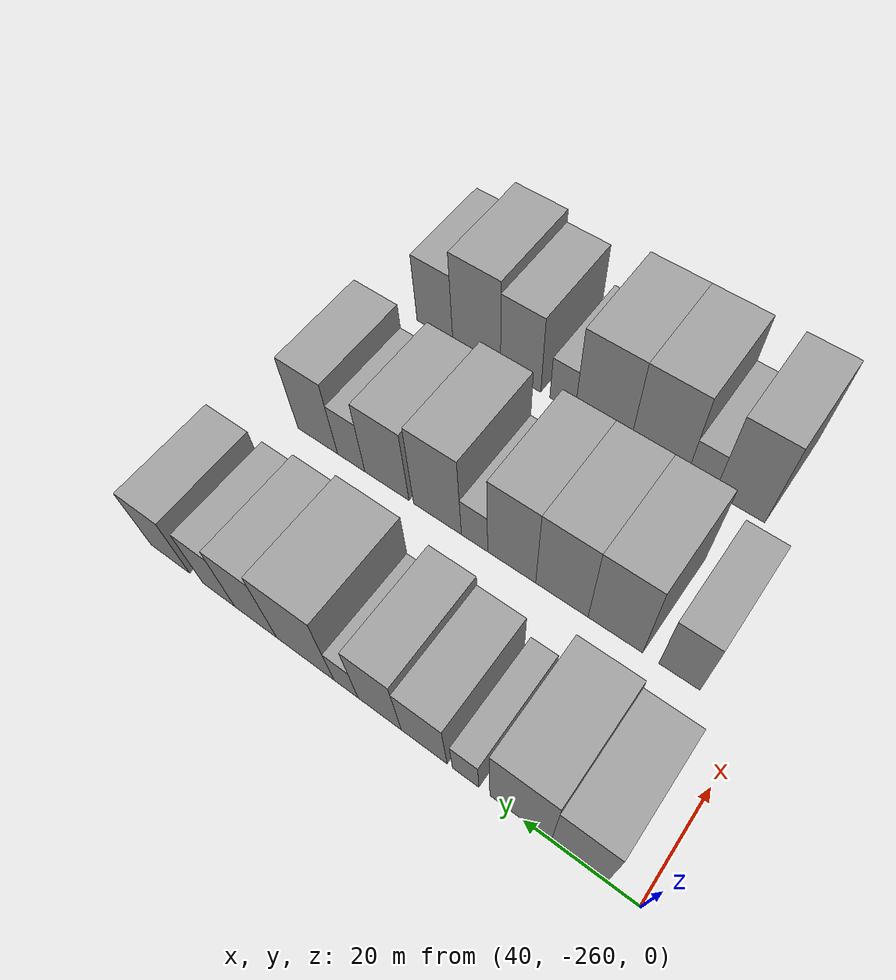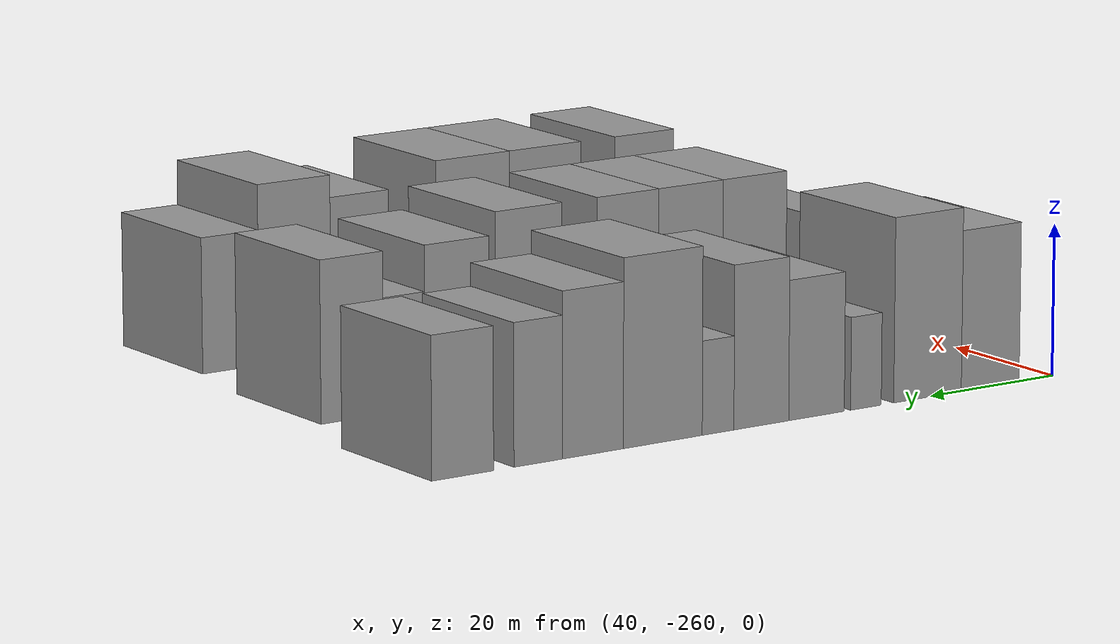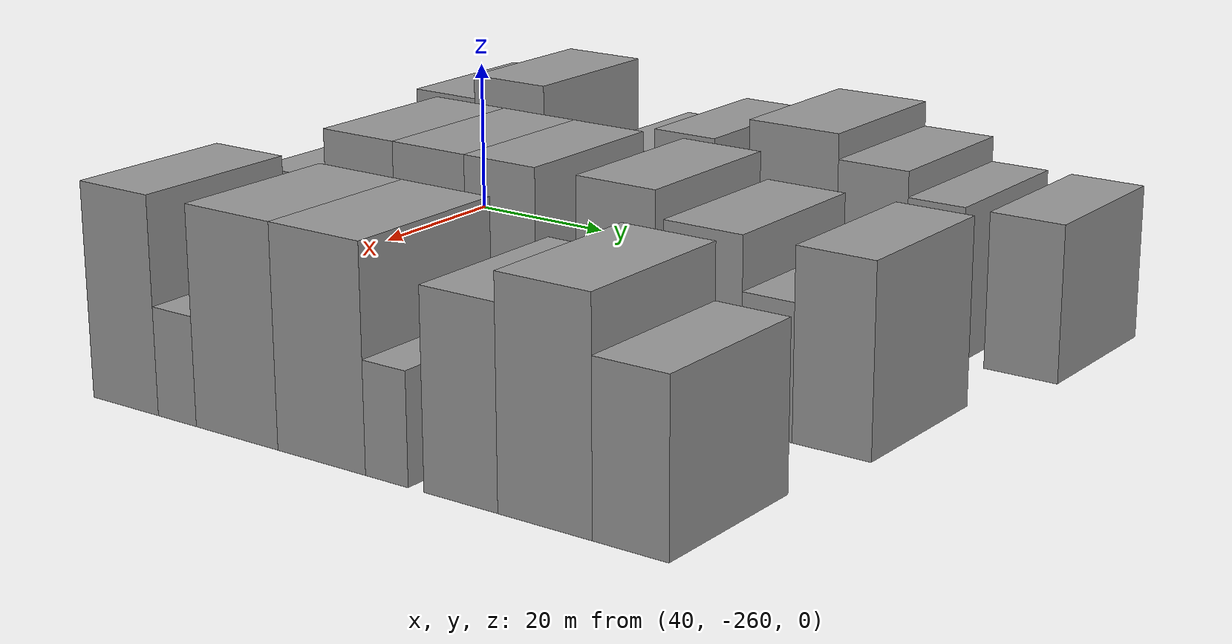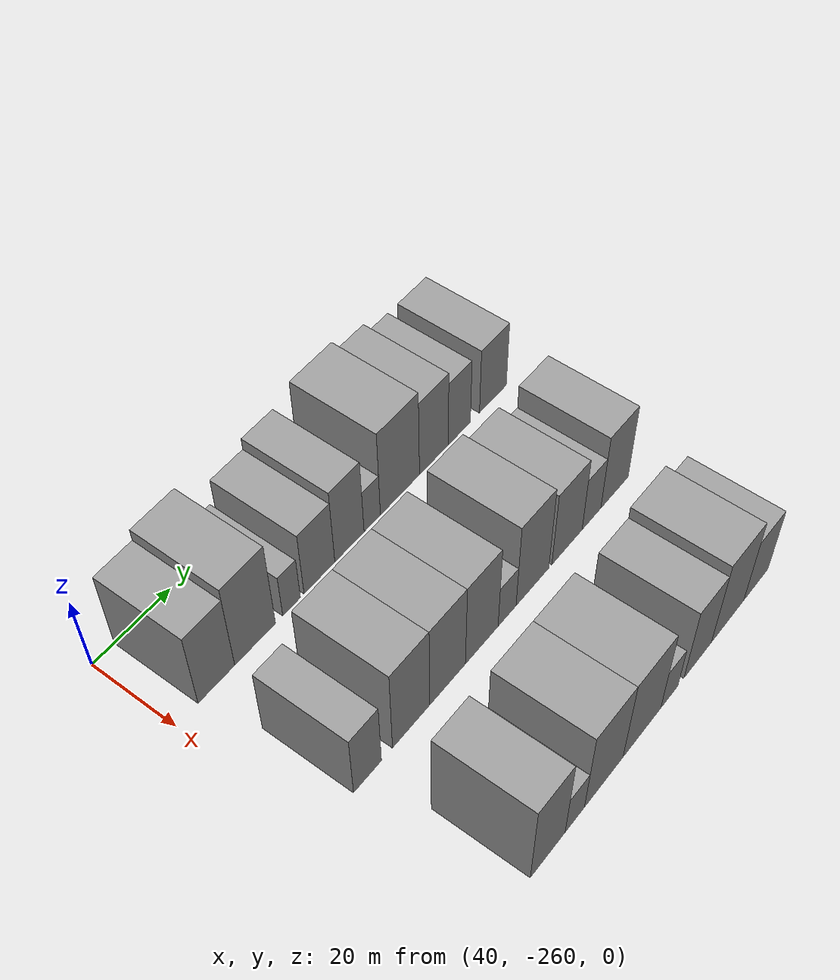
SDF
<sdf version="1.6">
 <world name="default">
  <model name="building_7">
   <static>1</static>
   <pose>50.0000 -249.6908 0 0.000000 0.000000 0.000000</pose>
   <link name="link">
    <pose>0 0 10.50 0 0 0</pose>
    <collision name="collision"><geometry><box><size>20.0000 9.5032 21.0000</size></box></geometry></collision>
    <visual name="visual">
     <cast_shadows>0</cast_shadows>
     <geometry><box><size>20.0000 9.5032 21.0000</size></box></geometry>
     <material>
      <script>
       <uri>model://grey_wall/materials/scripts</uri>
       <uri>model://grey_wall/materials/textures</uri>
       <name>vrc/grey_wall</name>
      </script>
     </material>
    </visual>
   </link>
  </model>
  <model name="building_8">
   <static>1</static>
   <pose>50.0000 -239.4764 0 0.000000 0.000000 0.000000</pose>
   <link name="link">
    <pose>0 0 12.00 0 0 0</pose>
    <collision name="collision"><geometry><box><size>20.0000 10.9257 24.0000</size></box></geometry></collision>
    <visual name="visual">
     <cast_shadows>0</cast_shadows>
     <geometry><box><size>20.0000 10.9257 24.0000</size></box></geometry>
     <material>
      <script>
       <uri>model://grey_wall/materials/scripts</uri>
       <uri>model://grey_wall/materials/textures</uri>
       <name>vrc/grey_wall</name>
      </script>
     </material>
    </visual>
   </link>
  </model>
  <model name="building_9">
   <static>1</static>
   <pose>50.0000 -229.5694 0 0.000000 0.000000 0.000000</pose>
   <link name="link">
    <pose>0 0 6.00 0 0 0</pose>
    <collision name="collision"><geometry><box><size>20.0000 4.8882 12.0000</size></box></geometry></collision>
    <visual name="visual">
     <cast_shadows>0</cast_shadows>
     <geometry><box><size>20.0000 4.8882 12.0000</size></box></geometry>
     <material>
      <script>
       <uri>model://grey_wall/materials/scripts</uri>
       <uri>model://grey_wall/materials/textures</uri>
       <name>vrc/grey_wall</name>
      </script>
     </material>
    </visual>
   </link>
  </model>
  <model name="building_10">
   <static>1</static>
   <pose>50.0000 -221.7451 0 0.000000 0.000000 0.000000</pose>
   <link name="link">
    <pose>0 0 9.00 0 0 0</pose>
    <collision name="collision"><geometry><box><size>20.0000 8.7604 18.0000</size></box></geometry></collision>
    <visual name="visual">
     <cast_shadows>0</cast_shadows>
     <geometry><box><size>20.0000 8.7604 18.0000</size></box></geometry>
     <material>
      <script>
       <uri>model://grey_wall/materials/scripts</uri>
       <uri>model://grey_wall/materials/textures</uri>
       <name>vrc/grey_wall</name>
      </script>
     </material>
    </visual>
   </link>
  </model>
  <model name="building_11">
   <static>1</static>
   <pose>50.0000 -213.0992 0 0.000000 0.000000 0.000000</pose>
   <link name="link">
    <pose>0 0 10.50 0 0 0</pose>
    <collision name="collision"><geometry><box><size>20.0000 8.5314 21.0000</size></box></geometry></collision>
    <visual name="visual">
     <cast_shadows>0</cast_shadows>
     <geometry><box><size>20.0000 8.5314 21.0000</size></box></geometry>
     <material>
      <script>
       <uri>model://grey_wall/materials/scripts</uri>
       <uri>model://grey_wall/materials/textures</uri>
       <name>vrc/grey_wall</name>
      </script>
     </material>
    </visual>
   </link>
  </model>
  <model name="building_12">
   <static>1</static>
   <pose>50.0000 -206.3909 0 0.000000 0.000000 0.000000</pose>
   <link name="link">
    <pose>0 0 6.00 0 0 0</pose>
    <collision name="collision"><geometry><box><size>20.0000 4.8852 12.0000</size></box></geometry></collision>
    <visual name="visual">
     <cast_shadows>0</cast_shadows>
     <geometry><box><size>20.0000 4.8852 12.0000</size></box></geometry>
     <material>
      <script>
       <uri>model://grey_wall/materials/scripts</uri>
       <uri>model://grey_wall/materials/textures</uri>
       <name>vrc/grey_wall</name>
      </script>
     </material>
    </visual>
   </link>
  </model>
  <model name="building_13">
   <static>1</static>
   <pose>50.0000 -197.9598 0 0.000000 0.000000 0.000000</pose>
   <link name="link">
    <pose>0 0 12.00 0 0 0</pose>
    <collision name="collision"><geometry><box><size>20.0000 11.9770 24.0000</size></box></geometry></collision>
    <visual name="visual">
     <cast_shadows>0</cast_shadows>
     <geometry><box><size>20.0000 11.9770 24.0000</size></box></geometry>
     <material>
      <script>
       <uri>model://grey_wall/materials/scripts</uri>
       <uri>model://grey_wall/materials/textures</uri>
       <name>vrc/grey_wall</name>
      </script>
     </material>
    </visual>
   </link>
  </model>
  <model name="building_14">
   <static>1</static>
   <pose>50.0000 -187.4181 0 0.000000 0.000000 0.000000</pose>
   <link name="link">
    <pose>0 0 10.50 0 0 0</pose>
    <collision name="collision"><geometry><box><size>20.0000 9.1064 21.0000</size></box></geometry></collision>
    <visual name="visual">
     <cast_shadows>0</cast_shadows>
     <geometry><box><size>20.0000 9.1064 21.0000</size></box></geometry>
     <material>
      <script>
       <uri>model://grey_wall/materials/scripts</uri>
       <uri>model://grey_wall/materials/textures</uri>
       <name>vrc/grey_wall</name>
      </script>
     </material>
    </visual>
   </link>
  </model>
  <model name="building_15">
   <static>1</static>
   <pose>50.0000 -179.2638 0 0.000000 0.000000 0.000000</pose>
   <link name="link">
    <pose>0 0 9.00 0 0 0</pose>
    <collision name="collision"><geometry><box><size>20.0000 7.2021 18.0000</size></box></geometry></collision>
    <visual name="visual">
     <cast_shadows>0</cast_shadows>
     <geometry><box><size>20.0000 7.2021 18.0000</size></box></geometry>
     <material>
      <script>
       <uri>model://grey_wall/materials/scripts</uri>
       <uri>model://grey_wall/materials/textures</uri>
       <name>vrc/grey_wall</name>
      </script>
     </material>
    </visual>
   </link>
  </model>
  <model name="building_16">
   <static>1</static>
   <pose>50.0000 -168.1647 0 0.000000 0.000000 0.000000</pose>
   <link name="link">
    <pose>0 0 9.00 0 0 0</pose>
    <collision name="collision"><geometry><box><size>20.0000 8.9962 18.0000</size></box></geometry></collision>
    <visual name="visual">
     <cast_shadows>0</cast_shadows>
     <geometry><box><size>20.0000 8.9962 18.0000</size></box></geometry>
     <material>
      <script>
       <uri>model://grey_wall/materials/scripts</uri>
       <uri>model://grey_wall/materials/textures</uri>
       <name>vrc/grey_wall</name>
      </script>
     </material>
    </visual>
   </link>
  </model>
  <model name="building_82">
   <static>1</static>
   <pose>82.0000 -247.6128 0 0.000000 0.000000 0.000000</pose>
   <link name="link">
    <pose>0 0 9.00 0 0 0</pose>
    <collision name="collision"><geometry><box><size>20.0000 7.4602 18.0000</size></box></geometry></collision>
    <visual name="visual">
     <cast_shadows>0</cast_shadows>
     <geometry><box><size>20.0000 7.4602 18.0000</size></box></geometry>
     <material>
      <script>
       <uri>model://grey_wall/materials/scripts</uri>
       <uri>model://grey_wall/materials/textures</uri>
       <name>vrc/grey_wall</name>
      </script>
     </material>
    </visual>
   </link>
  </model>
  <model name="building_83">
   <static>1</static>
   <pose>82.0000 -235.7181 0 0.000000 0.000000 0.000000</pose>
   <link name="link">
    <pose>0 0 12.00 0 0 0</pose>
    <collision name="collision"><geometry><box><size>20.0000 10.3291 24.0000</size></box></geometry></collision>
    <visual name="visual">
     <cast_shadows>0</cast_shadows>
     <geometry><box><size>20.0000 10.3291 24.0000</size></box></geometry>
     <material>
      <script>
       <uri>model://grey_wall/materials/scripts</uri>
       <uri>model://grey_wall/materials/textures</uri>
       <name>vrc/grey_wall</name>
      </script>
     </material>
    </visual>
   </link>
  </model>
  <model name="building_84">
   <static>1</static>
   <pose>82.0000 -225.4066 0 0.000000 0.000000 0.000000</pose>
   <link name="link">
    <pose>0 0 12.00 0 0 0</pose>
    <collision name="collision"><geometry><box><size>20.0000 10.2939 24.0000</size></box></geometry></collision>
    <visual name="visual">
     <cast_shadows>0</cast_shadows>
     <geometry><box><size>20.0000 10.2939 24.0000</size></box></geometry>
     <material>
      <script>
       <uri>model://grey_wall/materials/scripts</uri>
       <uri>model://grey_wall/materials/textures</uri>
       <name>vrc/grey_wall</name>
      </script>
     </material>
    </visual>
   </link>
  </model>
  <model name="building_85">
   <static>1</static>
   <pose>82.0000 -215.3774 0 0.000000 0.000000 0.000000</pose>
   <link name="link">
    <pose>0 0 12.00 0 0 0</pose>
    <collision name="collision"><geometry><box><size>20.0000 9.7645 24.0000</size></box></geometry></collision>
    <visual name="visual">
     <cast_shadows>0</cast_shadows>
     <geometry><box><size>20.0000 9.7645 24.0000</size></box></geometry>
     <material>
      <script>
       <uri>model://grey_wall/materials/scripts</uri>
       <uri>model://grey_wall/materials/textures</uri>
       <name>vrc/grey_wall</name>
      </script>
     </material>
    </visual>
   </link>
  </model>
  <model name="building_86">
   <static>1</static>
   <pose>82.0000 -207.7499 0 0.000000 0.000000 0.000000</pose>
   <link name="link">
    <pose>0 0 6.00 0 0 0</pose>
    <collision name="collision"><geometry><box><size>20.0000 5.4905 12.0000</size></box></geometry></collision>
    <visual name="visual">
     <cast_shadows>0</cast_shadows>
     <geometry><box><size>20.0000 5.4905 12.0000</size></box></geometry>
     <material>
      <script>
       <uri>model://grey_wall/materials/scripts</uri>
       <uri>model://grey_wall/materials/textures</uri>
       <name>vrc/grey_wall</name>
      </script>
     </material>
    </visual>
   </link>
  </model>
  <model name="building_87">
   <static>1</static>
   <pose>82.0000 -199.8691 0 0.000000 0.000000 0.000000</pose>
   <link name="link">
    <pose>0 0 12.00 0 0 0</pose>
    <collision name="collision"><geometry><box><size>20.0000 10.2711 24.0000</size></box></geometry></collision>
    <visual name="visual">
     <cast_shadows>0</cast_shadows>
     <geometry><box><size>20.0000 10.2711 24.0000</size></box></geometry>
     <material>
      <script>
       <uri>model://grey_wall/materials/scripts</uri>
       <uri>model://grey_wall/materials/textures</uri>
       <name>vrc/grey_wall</name>
      </script>
     </material>
    </visual>
   </link>
  </model>
  <model name="building_88">
   <static>1</static>
   <pose>82.0000 -188.8175 0 0.000000 0.000000 0.000000</pose>
   <link name="link">
    <pose>0 0 10.50 0 0 0</pose>
    <collision name="collision"><geometry><box><size>20.0000 9.8321 21.0000</size></box></geometry></collision>
    <visual name="visual">
     <cast_shadows>0</cast_shadows>
     <geometry><box><size>20.0000 9.8321 21.0000</size></box></geometry>
     <material>
      <script>
       <uri>model://grey_wall/materials/scripts</uri>
       <uri>model://grey_wall/materials/textures</uri>
       <name>vrc/grey_wall</name>
      </script>
     </material>
    </visual>
   </link>
  </model>
  <model name="building_89">
   <static>1</static>
   <pose>82.0000 -180.7747 0 0.000000 0.000000 0.000000</pose>
   <link name="link">
    <pose>0 0 7.50 0 0 0</pose>
    <collision name="collision"><geometry><box><size>20.0000 6.2535 15.0000</size></box></geometry></collision>
    <visual name="visual">
     <cast_shadows>0</cast_shadows>
     <geometry><box><size>20.0000 6.2535 15.0000</size></box></geometry>
     <material>
      <script>
       <uri>model://grey_wall/materials/scripts</uri>
       <uri>model://grey_wall/materials/textures</uri>
       <name>vrc/grey_wall</name>
      </script>
     </material>
    </visual>
   </link>
  </model>
  <model name="building_90">
   <static>1</static>
   <pose>82.0000 -172.9870 0 0.000000 0.000000 0.000000</pose>
   <link name="link">
    <pose>0 0 10.50 0 0 0</pose>
    <collision name="collision"><geometry><box><size>20.0000 9.3221 21.0000</size></box></geometry></collision>
    <visual name="visual">
     <cast_shadows>0</cast_shadows>
     <geometry><box><size>20.0000 9.3221 21.0000</size></box></geometry>
     <material>
      <script>
       <uri>model://grey_wall/materials/scripts</uri>
       <uri>model://grey_wall/materials/textures</uri>
       <name>vrc/grey_wall</name>
      </script>
     </material>
    </visual>
   </link>
  </model>
  <model name="building_160">
   <static>1</static>
   <pose>114.0000 -240.8364 0 0.000000 0.000000 0.000000</pose>
   <link name="link">
    <pose>0 0 12.00 0 0 0</pose>
    <collision name="collision"><geometry><box><size>20.0000 9.8305 24.0000</size></box></geometry></collision>
    <visual name="visual">
     <cast_shadows>0</cast_shadows>
     <geometry><box><size>20.0000 9.8305 24.0000</size></box></geometry>
     <material>
      <script>
       <uri>model://grey_wall/materials/scripts</uri>
       <uri>model://grey_wall/materials/textures</uri>
       <name>vrc/grey_wall</name>
      </script>
     </material>
    </visual>
   </link>
  </model>
  <model name="building_161">
   <static>1</static>
   <pose>114.0000 -233.1251 0 0.000000 0.000000 0.000000</pose>
   <link name="link">
    <pose>0 0 6.00 0 0 0</pose>
    <collision name="collision"><geometry><box><size>20.0000 5.5922 12.0000</size></box></geometry></collision>
    <visual name="visual">
     <cast_shadows>0</cast_shadows>
     <geometry><box><size>20.0000 5.5922 12.0000</size></box></geometry>
     <material>
      <script>
       <uri>model://grey_wall/materials/scripts</uri>
       <uri>model://grey_wall/materials/textures</uri>
       <name>vrc/grey_wall</name>
      </script>
     </material>
    </visual>
   </link>
  </model>
  <model name="building_162">
   <static>1</static>
   <pose>114.0000 -224.5406 0 0.000000 0.000000 0.000000</pose>
   <link name="link">
    <pose>0 0 12.00 0 0 0</pose>
    <collision name="collision"><geometry><box><size>20.0000 11.5768 24.0000</size></box></geometry></collision>
    <visual name="visual">
     <cast_shadows>0</cast_shadows>
     <geometry><box><size>20.0000 11.5768 24.0000</size></box></geometry>
     <material>
      <script>
       <uri>model://grey_wall/materials/scripts</uri>
       <uri>model://grey_wall/materials/textures</uri>
       <name>vrc/grey_wall</name>
      </script>
     </material>
    </visual>
   </link>
  </model>
  <model name="building_163">
   <static>1</static>
   <pose>114.0000 -212.8603 0 0.000000 0.000000 0.000000</pose>
   <link name="link">
    <pose>0 0 12.00 0 0 0</pose>
    <collision name="collision"><geometry><box><size>20.0000 11.7839 24.0000</size></box></geometry></collision>
    <visual name="visual">
     <cast_shadows>0</cast_shadows>
     <geometry><box><size>20.0000 11.7839 24.0000</size></box></geometry>
     <material>
      <script>
       <uri>model://grey_wall/materials/scripts</uri>
       <uri>model://grey_wall/materials/textures</uri>
       <name>vrc/grey_wall</name>
      </script>
     </material>
    </visual>
   </link>
  </model>
  <model name="building_164">
   <static>1</static>
   <pose>114.0000 -204.2133 0 0.000000 0.000000 0.000000</pose>
   <link name="link">
    <pose>0 0 6.00 0 0 0</pose>
    <collision name="collision"><geometry><box><size>20.0000 5.5100 12.0000</size></box></geometry></collision>
    <visual name="visual">
     <cast_shadows>0</cast_shadows>
     <geometry><box><size>20.0000 5.5100 12.0000</size></box></geometry>
     <material>
      <script>
       <uri>model://grey_wall/materials/scripts</uri>
       <uri>model://grey_wall/materials/textures</uri>
       <name>vrc/grey_wall</name>
      </script>
     </material>
    </visual>
   </link>
  </model>
  <model name="building_165">
   <static>1</static>
   <pose>114.0000 -194.8964 0 0.000000 0.000000 0.000000</pose>
   <link name="link">
    <pose>0 0 10.50 0 0 0</pose>
    <collision name="collision"><geometry><box><size>20.0000 9.1238 21.0000</size></box></geometry></collision>
    <visual name="visual">
     <cast_shadows>0</cast_shadows>
     <geometry><box><size>20.0000 9.1238 21.0000</size></box></geometry>
     <material>
      <script>
       <uri>model://grey_wall/materials/scripts</uri>
       <uri>model://grey_wall/materials/textures</uri>
       <name>vrc/grey_wall</name>
      </script>
     </material>
    </visual>
   </link>
  </model>
  <model name="building_166">
   <static>1</static>
   <pose>114.0000 -184.7731 0 0.000000 0.000000 0.000000</pose>
   <link name="link">
    <pose>0 0 12.00 0 0 0</pose>
    <collision name="collision"><geometry><box><size>20.0000 11.1229 24.0000</size></box></geometry></collision>
    <visual name="visual">
     <cast_shadows>0</cast_shadows>
     <geometry><box><size>20.0000 11.1229 24.0000</size></box></geometry>
     <material>
      <script>
       <uri>model://grey_wall/materials/scripts</uri>
       <uri>model://grey_wall/materials/textures</uri>
       <name>vrc/grey_wall</name>
      </script>
     </material>
    </visual>
   </link>
  </model>
  <model name="building_167">
   <static>1</static>
   <pose>114.0000 -174.9027 0 0.000000 0.000000 0.000000</pose>
   <link name="link">
    <pose>0 0 9.00 0 0 0</pose>
    <collision name="collision"><geometry><box><size>20.0000 8.6178 18.0000</size></box></geometry></collision>
    <visual name="visual">
     <cast_shadows>0</cast_shadows>
     <geometry><box><size>20.0000 8.6178 18.0000</size></box></geometry>
     <material>
      <script>
       <uri>model://grey_wall/materials/scripts</uri>
       <uri>model://grey_wall/materials/textures</uri>
       <name>vrc/grey_wall</name>
      </script>
     </material>
    </visual>
   </link>
  </model>
 </world>
</sdf>
